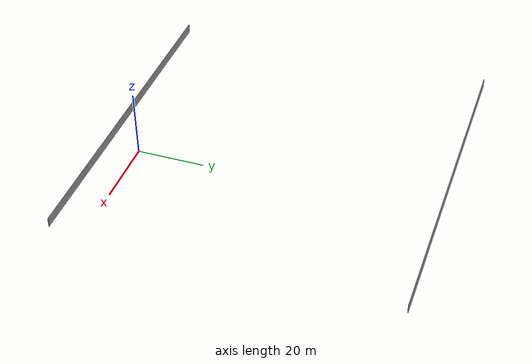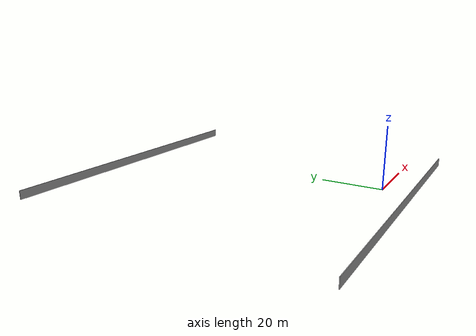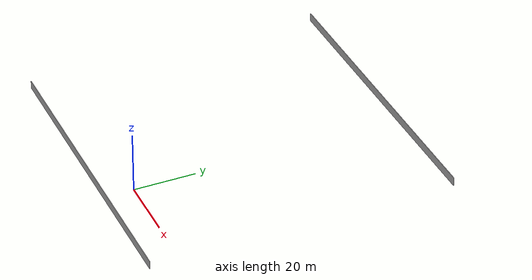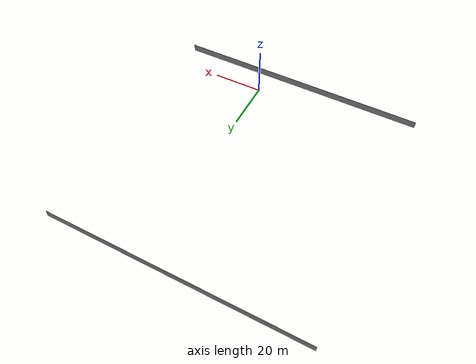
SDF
<?xml version='1.0'?>
<sdf version='1.7'>
  <model name='grey_wall'>
    <link name='link'>
      <pose>-13.2437 -9.79946 1.4 0 -0 0</pose>
      <self_collide>0</self_collide>
      <enable_wind>0</enable_wind>
      <kinematic>0</kinematic>
      <inertial>
        <inertia>
          <ixx>0</ixx>
          <ixy>0</ixy>
          <ixz>0</ixz>
          <iyy>0</iyy>
          <iyz>0</iyz>
          <izz>0</izz>
        </inertia>
        <mass>0</mass>
        <pose>0 0 0 0 -0 0</pose>
      </inertial>
      <visual name='visual'>
        <cast_shadows>0</cast_shadows>
        <geometry>
          <box>
            <size>100.154 0.2 2.8</size>
          </box>
        </geometry>
        <material>
          <script>
            <uri>model://grey_wall/materials/scripts</uri>
            <uri>model://grey_wall/materials/textures</uri>
            <name>vrc/grey_wall</name>
          </script>
          <shader type='pixel'/>
        </material>
        <pose>0 0 0 0 -0 0</pose>
        <transparency>0</transparency>
      </visual>
      <collision name='collision'>
        <laser_retro>0</laser_retro>
        <max_contacts>10</max_contacts>
        <pose>0 0 0 0 -0 0</pose>
        <geometry>
          <box>
            <size>100.154 0.2 2.8</size>
          </box>
        </geometry>
        <surface>
          <friction>
            <ode>
              <mu>1</mu>
              <mu2>1</mu2>
              <fdir1>0 0 0</fdir1>
              <slip1>0</slip1>
              <slip2>0</slip2>
            </ode>
            <torsional>
              <coefficient>1</coefficient>
              <patch_radius>0</patch_radius>
              <surface_radius>0</surface_radius>
              <use_patch_radius>1</use_patch_radius>
              <ode>
                <slip>0</slip>
              </ode>
            </torsional>
          </friction>
          <bounce>
            <restitution_coefficient>0</restitution_coefficient>
            <threshold>1e+06</threshold>
          </bounce>
          <contact>
            <collide_without_contact>0</collide_without_contact>
            <collide_without_contact_bitmask>1</collide_without_contact_bitmask>
            <collide_bitmask>1</collide_bitmask>
            <ode>
              <soft_cfm>0</soft_cfm>
              <soft_erp>0.2</soft_erp>
              <kp>1e+13</kp>
              <kd>1</kd>
              <max_vel>0.01</max_vel>
              <min_depth>0</min_depth>
            </ode>
            <bullet>
              <split_impulse>1</split_impulse>
              <split_impulse_penetration_threshold>-0.01</split_impulse_penetration_threshold>
              <soft_cfm>0</soft_cfm>
              <soft_erp>0.2</soft_erp>
              <kp>1e+13</kp>
              <kd>1</kd>
            </bullet>
          </contact>
        </surface>
      </collision>
    </link>
    <link name='link_clone'>
      <pose>-13.0713 88.7514 1.4 0 -0 0</pose>
      <self_collide>0</self_collide>
      <enable_wind>0</enable_wind>
      <kinematic>0</kinematic>
      <inertial>
        <inertia>
          <ixx>0</ixx>
          <ixy>0</ixy>
          <ixz>0</ixz>
          <iyy>0</iyy>
          <iyz>0</iyz>
          <izz>0</izz>
        </inertia>
        <mass>0</mass>
        <pose>0 0 0 0 -0 0</pose>
      </inertial>
      <visual name='visual'>
        <cast_shadows>0</cast_shadows>
        <geometry>
          <box>
            <size>100.154 0.2 2.8</size>
          </box>
        </geometry>
        <material>
          <script>
            <uri>model://grey_wall/materials/scripts</uri>
            <uri>model://grey_wall/materials/textures</uri>
            <name>vrc/grey_wall</name>
          </script>
          <shader type='pixel'/>
        </material>
        <pose>0 0 0 0 -0 0</pose>
        <transparency>0</transparency>
      </visual>
      <collision name='collision'>
        <laser_retro>0</laser_retro>
        <max_contacts>10</max_contacts>
        <pose>0 0 0 0 -0 0</pose>
        <geometry>
          <box>
            <size>100.154 0.2 2.8</size>
          </box>
        </geometry>
        <surface>
          <friction>
            <ode>
              <mu>1</mu>
              <mu2>1</mu2>
              <fdir1>0 0 0</fdir1>
              <slip1>0</slip1>
              <slip2>0</slip2>
            </ode>
            <torsional>
              <coefficient>1</coefficient>
              <patch_radius>0</patch_radius>
              <surface_radius>0</surface_radius>
              <use_patch_radius>1</use_patch_radius>
              <ode>
                <slip>0</slip>
              </ode>
            </torsional>
          </friction>
          <bounce>
            <restitution_coefficient>0</restitution_coefficient>
            <threshold>1e+06</threshold>
          </bounce>
          <contact>
            <collide_without_contact>0</collide_without_contact>
            <collide_without_contact_bitmask>1</collide_without_contact_bitmask>
            <collide_bitmask>1</collide_bitmask>
            <ode>
              <soft_cfm>0</soft_cfm>
              <soft_erp>0.2</soft_erp>
              <kp>1e+13</kp>
              <kd>1</kd>
              <max_vel>0.01</max_vel>
              <min_depth>0</min_depth>
            </ode>
            <bullet>
              <split_impulse>1</split_impulse>
              <split_impulse_penetration_threshold>-0.01</split_impulse_penetration_threshold>
              <soft_cfm>0</soft_cfm>
              <soft_erp>0.2</soft_erp>
              <kp>1e+13</kp>
              <kd>1</kd>
            </bullet>
          </contact>
        </surface>
      </collision>
    </link>
    <static>1</static>
    <allow_auto_disable>1</allow_auto_disable>
  </model>
</sdf>
